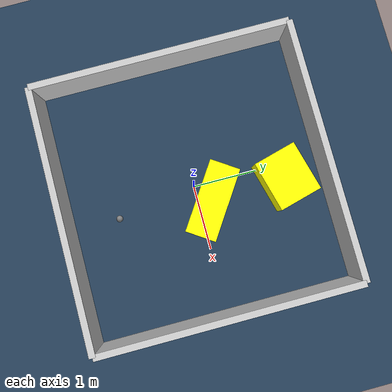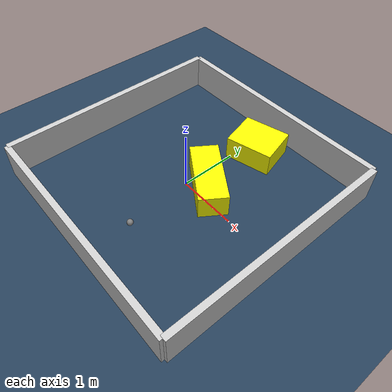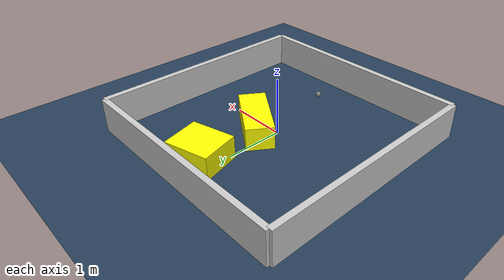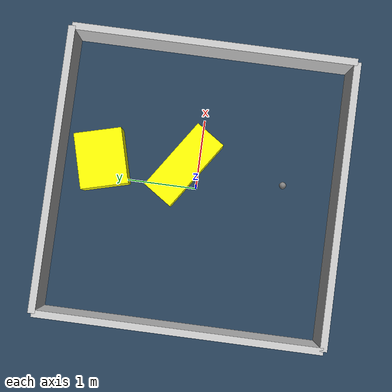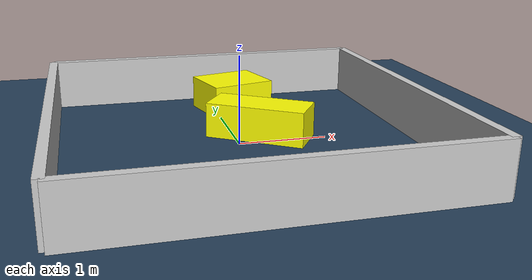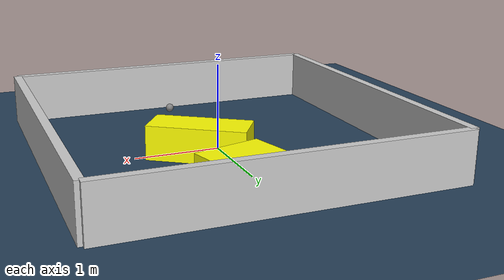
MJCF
<?xml version="1.0" ?>
<mujoco model="generated_environment">
  <option timestep="0.01" integrator="RK4" cone="elliptic"/>
  <default>
    <geom density="1"/>
  </default>
  <asset>
    <texture builtin="gradient" height="3072" rgb1="0.3 0.5 0.7" rgb2="0 0 0" type="skybox" width="512"/>
    <texture builtin="checker" height="300" mark="edge" markrgb="0.8 0.8 0.8" name="groundplane" rgb1="0.2 0.3 0.4" rgb2="0.1 0.2 0.3" type="2d" width="300"/>
    <material name="groundplane" reflectance="0.2" texrepeat="5 5" texture="groundplane" texuniform="true"/>
    <material name="robot" rgba="0.0 1.0 0.0 1"/>
  </asset>
  <worldbody>
    <light dir="0 0 -1" directional="true" pos="0 0 1.5"/>
    <geom condim="4" friction="1.0 0.005 0.001" material="groundplane" name="floor" size="0 0 0.05" type="plane"/>
    <body name="walls">
      <geom name="wall_1" condim="4" pos="-2.0 0.0 0.3" rgba="0.800000011920929 0.800000011920929 0.800000011920929 1.0" size="0.05 2.0 0.3" type="box"/>
      <geom name="wall_2" condim="4" pos="2.0 0.0 0.3" rgba="0.800000011920929 0.800000011920929 0.800000011920929 1.0" size="0.05 2.0 0.3" type="box"/>
      <geom name="wall_3" condim="4" pos="0.0 -2.0 0.3" rgba="0.800000011920929 0.800000011920929 0.800000011920929 1.0" size="2.0 0.05 0.3" type="box"/>
      <geom name="wall_4" condim="4" pos="0.0 2.0 0.3" rgba="0.800000011920929 0.800000011920929 0.800000011920929 1.0" size="2.0 0.05 0.3" type="box"/>
    </body>
    <body name="robot">
      <joint name="joint_x" type="slide" pos="0 0 0" axis="1 0 0"/>
      <joint name="joint_y" type="slide" pos="0 0 0" axis="0 1 0"/>
      <geom name="robot" type="sphere" pos="0.19606778928732682 -1.221729996724965 0.2" size="0.05" mass="5." friction="1.0 0.005 0.0001" condim="4"/>
      <site name="sensor_ball"/>
    </body>
    <body name="obstacle_1_movable">
      <geom name="obstacle_1_movable" condim="4" pos="0.23518185494432475 1.3817119858577707 0.2" euler="0 0 194.8530767601929" friction="1.0 0.005 0.001" rgba="1 1 0 1" size="0.39724712170317694 0.33840496520992996 0.2" type="box" mass="0.1"/>
      <joint type="free"/>
    </body>
    <body name="obstacle_2_movable">
      <geom name="obstacle_2_movable" condim="4" pos="0.29528439439860144 0.21113128765893574 0.2" euler="0 0 326.06923059192087" friction="1.0 0.005 0.001" rgba="1 1 0 1" size="0.5710045919291522 0.23722650405831588 0.2" type="box" mass="0.1"/>
      <joint type="free"/>
    </body>
  </worldbody>
  <actuator>
    <motor name="actuator_x" joint="joint_x" gear="1" ctrlrange="-1 1"/>
    <motor name="actuator_y" joint="joint_y" gear="1" ctrlrange="-1 1"/>
  </actuator>
</mujoco>
